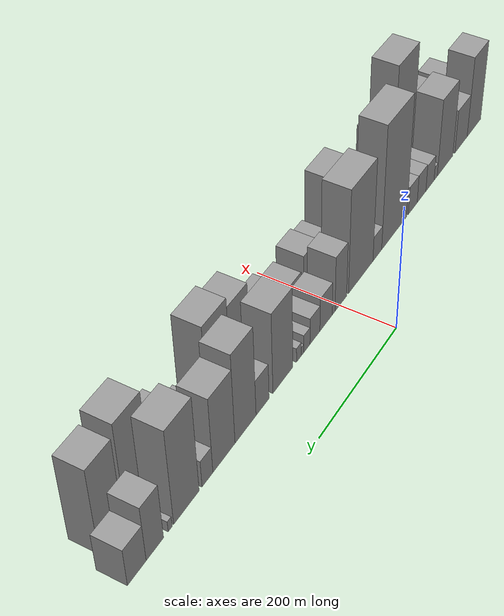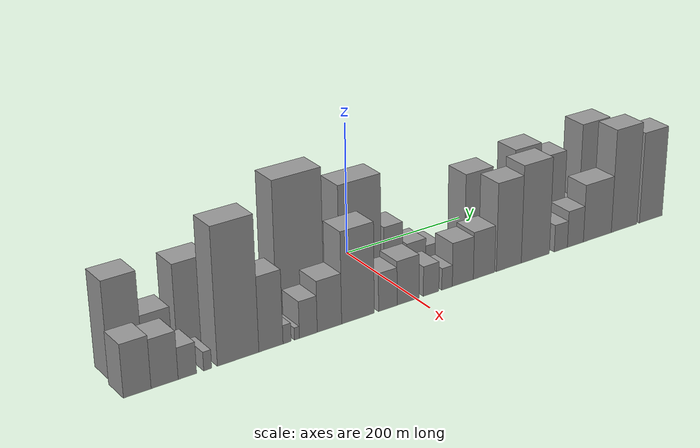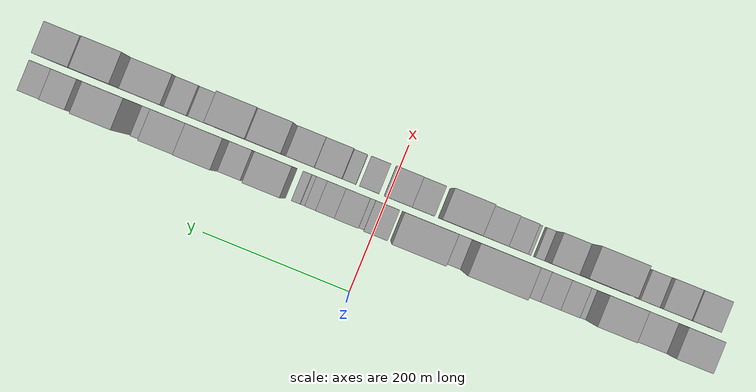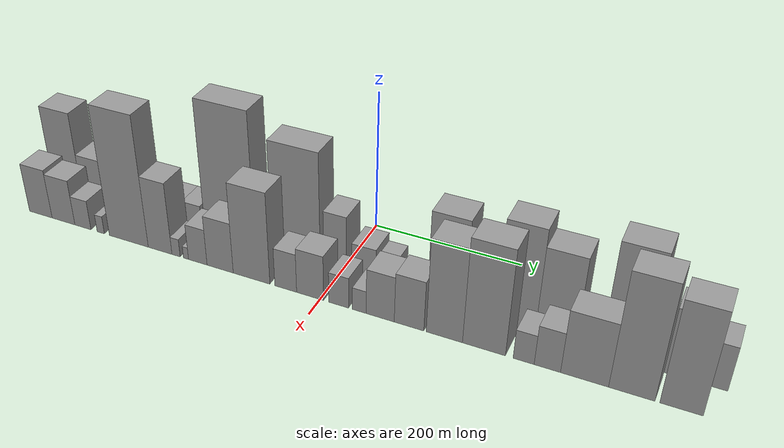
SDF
<sdf version="1.6">
 <world name="default">
  <scene>
   <sky><clouds><speed>12</speed></clouds></sky>
   <ambient>0.4 0.4 0.4 1</ambient>
   <background>0.7 0.7 0.7 1</background>
   <shadows>1</shadows>
  </scene>
  <gravity>0 0 -9.8066</gravity>
  <magnetic_field>6e-06 2.3e-05 -4.2e-05</magnetic_field>
  <physics default="0" name="default_physics" type="ode">
   <ode>
    <solver>
     <type>quick</type>
     <iters>10</iters>
     <sor>1.0</sor>
     <use_dynamic_moi_rescaling>0</use_dynamic_moi_rescaling>
    </solver>
    <constraints>
     <cfm>0</cfm>
     <erp>0.2</erp>
     <contact_max_correcting_vel>100</contact_max_correcting_vel>
     <contact_surface_layer>0.001</contact_surface_layer>
    </constraints>
   </ode>
   <max_step_size>0.004</max_step_size>
   <real_time_factor>1</real_time_factor>
   <real_time_update_rate>250</real_time_update_rate>
  </physics>
  <light name="sun" type="directional">
   <pose>0 0 10 0 0 0</pose>
   <diffuse>0.8 0.8 0.8 1</diffuse>
   <specular>0.2 0.2 0.2 1</specular>
   <attenuation>
    <range>1000</range>
    <constant>0.9</constant>
    <linear>0.01</linear>
    <quadratic>0.001</quadratic>
   </attenuation>
   <direction>-0.5 0.1 -0.9</direction>
  </light>
  <model name="building_1">
   <static>1</static>
   <pose>100.0000 -409.4614 0 0.000000 0.000000 0.000000</pose>
   <link name="link">
    <pose>0 0 69.00 0 0 0</pose>
    <collision name="collision"><geometry><box><size>40.0000 47.0772 138.0000</size></box></geometry></collision>
    <visual name="visual">
     <cast_shadows>0</cast_shadows>
     <geometry><box><size>40.0000 47.0772 138.0000</size></box></geometry>
     <material>
      <script>
       <uri>model://grey_wall/materials/scripts</uri>
       <uri>model://grey_wall/materials/textures</uri>
       <name>vrc/grey_wall</name>
      </script>
     </material>
    </visual>
   </link>
  </model>
  <model name="building_2">
   <static>1</static>
   <pose>100.0000 -365.0946 0 0.000000 0.000000 0.000000</pose>
   <link name="link">
    <pose>0 0 37.50 0 0 0</pose>
    <collision name="collision"><geometry><box><size>40.0000 41.6565 75.0000</size></box></geometry></collision>
    <visual name="visual">
     <cast_shadows>0</cast_shadows>
     <geometry><box><size>40.0000 41.6565 75.0000</size></box></geometry>
     <material>
      <script>
       <uri>model://grey_wall/materials/scripts</uri>
       <uri>model://grey_wall/materials/textures</uri>
       <name>vrc/grey_wall</name>
      </script>
     </material>
    </visual>
   </link>
  </model>
  <model name="building_3">
   <static>1</static>
   <pose>100.0000 -311.8531 0 0.000000 0.000000 0.000000</pose>
   <link name="link">
    <pose>0 0 66.00 0 0 0</pose>
    <collision name="collision"><geometry><box><size>40.0000 50.8265 132.0000</size></box></geometry></collision>
    <visual name="visual">
     <cast_shadows>0</cast_shadows>
     <geometry><box><size>40.0000 50.8265 132.0000</size></box></geometry>
     <material>
      <script>
       <uri>model://grey_wall/materials/scripts</uri>
       <uri>model://grey_wall/materials/textures</uri>
       <name>vrc/grey_wall</name>
      </script>
     </material>
    </visual>
   </link>
  </model>
  <model name="building_4">
   <static>1</static>
   <pose>100.0000 -281.1949 0 0.000000 0.000000 0.000000</pose>
   <link name="link">
    <pose>0 0 12.00 0 0 0</pose>
    <collision name="collision"><geometry><box><size>40.0000 10.4900 24.0000</size></box></geometry></collision>
    <visual name="visual">
     <cast_shadows>0</cast_shadows>
     <geometry><box><size>40.0000 10.4900 24.0000</size></box></geometry>
     <material>
      <script>
       <uri>model://grey_wall/materials/scripts</uri>
       <uri>model://grey_wall/materials/textures</uri>
       <name>vrc/grey_wall</name>
      </script>
     </material>
    </visual>
   </link>
  </model>
  <model name="building_5">
   <static>1</static>
   <pose>100.0000 -262.9071 0 0.000000 0.000000 0.000000</pose>
   <link name="link">
    <pose>0 0 22.50 0 0 0</pose>
    <collision name="collision"><geometry><box><size>40.0000 26.0856 45.0000</size></box></geometry></collision>
    <visual name="visual">
     <cast_shadows>0</cast_shadows>
     <geometry><box><size>40.0000 26.0856 45.0000</size></box></geometry>
     <material>
      <script>
       <uri>model://grey_wall/materials/scripts</uri>
       <uri>model://grey_wall/materials/textures</uri>
       <name>vrc/grey_wall</name>
      </script>
     </material>
    </visual>
   </link>
  </model>
  <model name="building_6">
   <static>1</static>
   <pose>100.0000 -236.3445 0 0.000000 0.000000 0.000000</pose>
   <link name="link">
    <pose>0 0 24.00 0 0 0</pose>
    <collision name="collision"><geometry><box><size>40.0000 27.0394 48.0000</size></box></geometry></collision>
    <visual name="visual">
     <cast_shadows>0</cast_shadows>
     <geometry><box><size>40.0000 27.0394 48.0000</size></box></geometry>
     <material>
      <script>
       <uri>model://grey_wall/materials/scripts</uri>
       <uri>model://grey_wall/materials/textures</uri>
       <name>vrc/grey_wall</name>
      </script>
     </material>
    </visual>
   </link>
  </model>
  <model name="building_7">
   <static>1</static>
   <pose>100.0000 -209.1053 0 0.000000 0.000000 0.000000</pose>
   <link name="link">
    <pose>0 0 24.00 0 0 0</pose>
    <collision name="collision"><geometry><box><size>40.0000 27.4389 48.0000</size></box></geometry></collision>
    <visual name="visual">
     <cast_shadows>0</cast_shadows>
     <geometry><box><size>40.0000 27.4389 48.0000</size></box></geometry>
     <material>
      <script>
       <uri>model://grey_wall/materials/scripts</uri>
       <uri>model://grey_wall/materials/textures</uri>
       <name>vrc/grey_wall</name>
      </script>
     </material>
    </visual>
   </link>
  </model>
  <model name="building_8">
   <static>1</static>
   <pose>100.0000 -153.4425 0 0.000000 0.000000 0.000000</pose>
   <link name="link">
    <pose>0 0 103.50 0 0 0</pose>
    <collision name="collision"><geometry><box><size>40.0000 73.8868 207.0000</size></box></geometry></collision>
    <visual name="visual">
     <cast_shadows>0</cast_shadows>
     <geometry><box><size>40.0000 73.8868 207.0000</size></box></geometry>
     <material>
      <script>
       <uri>model://grey_wall/materials/scripts</uri>
       <uri>model://grey_wall/materials/textures</uri>
       <name>vrc/grey_wall</name>
      </script>
     </material>
    </visual>
   </link>
  </model>
  <model name="building_9">
   <static>1</static>
   <pose>100.0000 -104.0203 0 0.000000 0.000000 0.000000</pose>
   <link name="link">
    <pose>0 0 21.00 0 0 0</pose>
    <collision name="collision"><geometry><box><size>40.0000 24.9575 42.0000</size></box></geometry></collision>
    <visual name="visual">
     <cast_shadows>0</cast_shadows>
     <geometry><box><size>40.0000 24.9575 42.0000</size></box></geometry>
     <material>
      <script>
       <uri>model://grey_wall/materials/scripts</uri>
       <uri>model://grey_wall/materials/textures</uri>
       <name>vrc/grey_wall</name>
      </script>
     </material>
    </visual>
   </link>
  </model>
  <model name="building_10">
   <static>1</static>
   <pose>100.0000 -57.6209 0 0.000000 0.000000 0.000000</pose>
   <link name="link">
    <pose>0 0 87.00 0 0 0</pose>
    <collision name="collision"><geometry><box><size>40.0000 67.8414 174.0000</size></box></geometry></collision>
    <visual name="visual">
     <cast_shadows>0</cast_shadows>
     <geometry><box><size>40.0000 67.8414 174.0000</size></box></geometry>
     <material>
      <script>
       <uri>model://grey_wall/materials/scripts</uri>
       <uri>model://grey_wall/materials/textures</uri>
       <name>vrc/grey_wall</name>
      </script>
     </material>
    </visual>
   </link>
  </model>
  <model name="building_11">
   <static>1</static>
   <pose>100.0000 -3.1786 0 0.000000 0.000000 0.000000</pose>
   <link name="link">
    <pose>0 0 46.50 0 0 0</pose>
    <collision name="collision"><geometry><box><size>40.0000 31.0432 93.0000</size></box></geometry></collision>
    <visual name="visual">
     <cast_shadows>0</cast_shadows>
     <geometry><box><size>40.0000 31.0432 93.0000</size></box></geometry>
     <material>
      <script>
       <uri>model://grey_wall/materials/scripts</uri>
       <uri>model://grey_wall/materials/textures</uri>
       <name>vrc/grey_wall</name>
      </script>
     </material>
    </visual>
   </link>
  </model>
  <model name="building_12">
   <static>1</static>
   <pose>100.0000 15.9284 0 0.000000 0.000000 0.000000</pose>
   <link name="link">
    <pose>0 0 7.50 0 0 0</pose>
    <collision name="collision"><geometry><box><size>40.0000 7.1708 15.0000</size></box></geometry></collision>
    <visual name="visual">
     <cast_shadows>0</cast_shadows>
     <geometry><box><size>40.0000 7.1708 15.0000</size></box></geometry>
     <material>
      <script>
       <uri>model://grey_wall/materials/scripts</uri>
       <uri>model://grey_wall/materials/textures</uri>
       <name>vrc/grey_wall</name>
      </script>
     </material>
    </visual>
   </link>
  </model>
  <model name="building_13">
   <static>1</static>
   <pose>100.0000 35.5985 0 0.000000 0.000000 0.000000</pose>
   <link name="link">
    <pose>0 0 28.50 0 0 0</pose>
    <collision name="collision"><geometry><box><size>40.0000 32.1693 57.0000</size></box></geometry></collision>
    <visual name="visual">
     <cast_shadows>0</cast_shadows>
     <geometry><box><size>40.0000 32.1693 57.0000</size></box></geometry>
     <material>
      <script>
       <uri>model://grey_wall/materials/scripts</uri>
       <uri>model://grey_wall/materials/textures</uri>
       <name>vrc/grey_wall</name>
      </script>
     </material>
    </visual>
   </link>
  </model>
  <model name="building_14">
   <static>1</static>
   <pose>100.0000 64.3368 0 0.000000 0.000000 0.000000</pose>
   <link name="link">
    <pose>0 0 22.50 0 0 0</pose>
    <collision name="collision"><geometry><box><size>40.0000 25.3074 45.0000</size></box></geometry></collision>
    <visual name="visual">
     <cast_shadows>0</cast_shadows>
     <geometry><box><size>40.0000 25.3074 45.0000</size></box></geometry>
     <material>
      <script>
       <uri>model://grey_wall/materials/scripts</uri>
       <uri>model://grey_wall/materials/textures</uri>
       <name>vrc/grey_wall</name>
      </script>
     </material>
    </visual>
   </link>
  </model>
  <model name="building_15">
   <static>1</static>
   <pose>100.0000 84.6189 0 0.000000 0.000000 0.000000</pose>
   <link name="link">
    <pose>0 0 15.00 0 0 0</pose>
    <collision name="collision"><geometry><box><size>40.0000 15.2567 30.0000</size></box></geometry></collision>
    <visual name="visual">
     <cast_shadows>0</cast_shadows>
     <geometry><box><size>40.0000 15.2567 30.0000</size></box></geometry>
     <material>
      <script>
       <uri>model://grey_wall/materials/scripts</uri>
       <uri>model://grey_wall/materials/textures</uri>
       <name>vrc/grey_wall</name>
      </script>
     </material>
    </visual>
   </link>
  </model>
  <model name="building_16">
   <static>1</static>
   <pose>100.0000 95.3772 0 0.000000 0.000000 0.000000</pose>
   <link name="link">
    <pose>0 0 7.50 0 0 0</pose>
    <collision name="collision"><geometry><box><size>40.0000 6.2601 15.0000</size></box></geometry></collision>
    <visual name="visual">
     <cast_shadows>0</cast_shadows>
     <geometry><box><size>40.0000 6.2601 15.0000</size></box></geometry>
     <material>
      <script>
       <uri>model://grey_wall/materials/scripts</uri>
       <uri>model://grey_wall/materials/textures</uri>
       <name>vrc/grey_wall</name>
      </script>
     </material>
    </visual>
   </link>
  </model>
  <model name="building_17">
   <static>1</static>
   <pose>100.0000 104.4697 0 0.000000 0.000000 0.000000</pose>
   <link name="link">
    <pose>0 0 12.00 0 0 0</pose>
    <collision name="collision"><geometry><box><size>40.0000 11.9249 24.0000</size></box></geometry></collision>
    <visual name="visual">
     <cast_shadows>0</cast_shadows>
     <geometry><box><size>40.0000 11.9249 24.0000</size></box></geometry>
     <material>
      <script>
       <uri>model://grey_wall/materials/scripts</uri>
       <uri>model://grey_wall/materials/textures</uri>
       <name>vrc/grey_wall</name>
      </script>
     </material>
    </visual>
   </link>
  </model>
  <model name="building_18">
   <static>1</static>
   <pose>100.0000 143.3499 0 0.000000 0.000000 0.000000</pose>
   <link name="link">
    <pose>0 0 67.50 0 0 0</pose>
    <collision name="collision"><geometry><box><size>40.0000 47.8355 135.0000</size></box></geometry></collision>
    <visual name="visual">
     <cast_shadows>0</cast_shadows>
     <geometry><box><size>40.0000 47.8355 135.0000</size></box></geometry>
     <material>
      <script>
       <uri>model://grey_wall/materials/scripts</uri>
       <uri>model://grey_wall/materials/textures</uri>
       <name>vrc/grey_wall</name>
      </script>
     </material>
    </visual>
   </link>
  </model>
  <model name="building_19">
   <static>1</static>
   <pose>100.0000 191.3080 0 0.000000 0.000000 0.000000</pose>
   <link name="link">
    <pose>0 0 30.00 0 0 0</pose>
    <collision name="collision"><geometry><box><size>40.0000 30.0808 60.0000</size></box></geometry></collision>
    <visual name="visual">
     <cast_shadows>0</cast_shadows>
     <geometry><box><size>40.0000 30.0808 60.0000</size></box></geometry>
     <material>
      <script>
       <uri>model://grey_wall/materials/scripts</uri>
       <uri>model://grey_wall/materials/textures</uri>
       <name>vrc/grey_wall</name>
      </script>
     </material>
    </visual>
   </link>
  </model>
  <model name="building_20">
   <static>1</static>
   <pose>100.0000 229.9911 0 0.000000 0.000000 0.000000</pose>
   <link name="link">
    <pose>0 0 75.00 0 0 0</pose>
    <collision name="collision"><geometry><box><size>40.0000 47.2853 150.0000</size></box></geometry></collision>
    <visual name="visual">
     <cast_shadows>0</cast_shadows>
     <geometry><box><size>40.0000 47.2853 150.0000</size></box></geometry>
     <material>
      <script>
       <uri>model://grey_wall/materials/scripts</uri>
       <uri>model://grey_wall/materials/textures</uri>
       <name>vrc/grey_wall</name>
      </script>
     </material>
    </visual>
   </link>
  </model>
  <model name="building_21">
   <static>1</static>
   <pose>100.0000 277.5920 0 0.000000 0.000000 0.000000</pose>
   <link name="link">
    <pose>0 0 63.00 0 0 0</pose>
    <collision name="collision"><geometry><box><size>40.0000 47.9166 126.0000</size></box></geometry></collision>
    <visual name="visual">
     <cast_shadows>0</cast_shadows>
     <geometry><box><size>40.0000 47.9166 126.0000</size></box></geometry>
     <material>
      <script>
       <uri>model://grey_wall/materials/scripts</uri>
       <uri>model://grey_wall/materials/textures</uri>
       <name>vrc/grey_wall</name>
      </script>
     </material>
    </visual>
   </link>
  </model>
  <model name="building_22">
   <static>1</static>
   <pose>100.0000 312.9710 0 0.000000 0.000000 0.000000</pose>
   <link name="link">
    <pose>0 0 22.50 0 0 0</pose>
    <collision name="collision"><geometry><box><size>40.0000 22.8412 45.0000</size></box></geometry></collision>
    <visual name="visual">
     <cast_shadows>0</cast_shadows>
     <geometry><box><size>40.0000 22.8412 45.0000</size></box></geometry>
     <material>
      <script>
       <uri>model://grey_wall/materials/scripts</uri>
       <uri>model://grey_wall/materials/textures</uri>
       <name>vrc/grey_wall</name>
      </script>
     </material>
    </visual>
   </link>
  </model>
  <model name="building_23">
   <static>1</static>
   <pose>100.0000 356.3188 0 0.000000 0.000000 0.000000</pose>
   <link name="link">
    <pose>0 0 79.50 0 0 0</pose>
    <collision name="collision"><geometry><box><size>40.0000 51.8543 159.0000</size></box></geometry></collision>
    <visual name="visual">
     <cast_shadows>0</cast_shadows>
     <geometry><box><size>40.0000 51.8543 159.0000</size></box></geometry>
     <material>
      <script>
       <uri>model://grey_wall/materials/scripts</uri>
       <uri>model://grey_wall/materials/textures</uri>
       <name>vrc/grey_wall</name>
      </script>
     </material>
    </visual>
   </link>
  </model>
  <model name="building_24">
   <static>1</static>
   <pose>100.0000 389.1446 0 0.000000 0.000000 0.000000</pose>
   <link name="link">
    <pose>0 0 9.00 0 0 0</pose>
    <collision name="collision"><geometry><box><size>40.0000 7.7974 18.0000</size></box></geometry></collision>
    <visual name="visual">
     <cast_shadows>0</cast_shadows>
     <geometry><box><size>40.0000 7.7974 18.0000</size></box></geometry>
     <material>
      <script>
       <uri>model://grey_wall/materials/scripts</uri>
       <uri>model://grey_wall/materials/textures</uri>
       <name>vrc/grey_wall</name>
      </script>
     </material>
    </visual>
   </link>
  </model>
  <model name="building_25">
   <static>1</static>
   <pose>100.0000 418.8603 0 0.000000 0.000000 0.000000</pose>
   <link name="link">
    <pose>0 0 46.50 0 0 0</pose>
    <collision name="collision"><geometry><box><size>40.0000 33.6339 93.0000</size></box></geometry></collision>
    <visual name="visual">
     <cast_shadows>0</cast_shadows>
     <geometry><box><size>40.0000 33.6339 93.0000</size></box></geometry>
     <material>
      <script>
       <uri>model://grey_wall/materials/scripts</uri>
       <uri>model://grey_wall/materials/textures</uri>
       <name>vrc/grey_wall</name>
      </script>
     </material>
    </visual>
   </link>
  </model>
  <model name="building_26">
   <static>1</static>
   <pose>100.0000 453.3038 0 0.000000 0.000000 0.000000</pose>
   <link name="link">
    <pose>0 0 31.50 0 0 0</pose>
    <collision name="collision"><geometry><box><size>40.0000 35.2532 63.0000</size></box></geometry></collision>
    <visual name="visual">
     <cast_shadows>0</cast_shadows>
     <geometry><box><size>40.0000 35.2532 63.0000</size></box></geometry>
     <material>
      <script>
       <uri>model://grey_wall/materials/scripts</uri>
       <uri>model://grey_wall/materials/textures</uri>
       <name>vrc/grey_wall</name>
      </script>
     </material>
    </visual>
   </link>
  </model>
  <model name="building_27">
   <static>1</static>
   <pose>149.0000 -419.1655 0 0.000000 0.000000 0.000000</pose>
   <link name="link">
    <pose>0 0 37.50 0 0 0</pose>
    <collision name="collision"><geometry><box><size>40.0000 37.6691 75.0000</size></box></geometry></collision>
    <visual name="visual">
     <cast_shadows>0</cast_shadows>
     <geometry><box><size>40.0000 37.6691 75.0000</size></box></geometry>
     <material>
      <script>
       <uri>model://grey_wall/materials/scripts</uri>
       <uri>model://grey_wall/materials/textures</uri>
       <name>vrc/grey_wall</name>
      </script>
     </material>
    </visual>
   </link>
  </model>
  <model name="building_28">
   <static>1</static>
   <pose>149.0000 -381.6308 0 0.000000 0.000000 0.000000</pose>
   <link name="link">
    <pose>0 0 34.50 0 0 0</pose>
    <collision name="collision"><geometry><box><size>40.0000 37.4002 69.0000</size></box></geometry></collision>
    <visual name="visual">
     <cast_shadows>0</cast_shadows>
     <geometry><box><size>40.0000 37.4002 69.0000</size></box></geometry>
     <material>
      <script>
       <uri>model://grey_wall/materials/scripts</uri>
       <uri>model://grey_wall/materials/textures</uri>
       <name>vrc/grey_wall</name>
      </script>
     </material>
    </visual>
   </link>
  </model>
  <model name="building_29">
   <static>1</static>
   <pose>149.0000 -349.9887 0 0.000000 0.000000 0.000000</pose>
   <link name="link">
    <pose>0 0 22.50 0 0 0</pose>
    <collision name="collision"><geometry><box><size>40.0000 25.8842 45.0000</size></box></geometry></collision>
    <visual name="visual">
     <cast_shadows>0</cast_shadows>
     <geometry><box><size>40.0000 25.8842 45.0000</size></box></geometry>
     <material>
      <script>
       <uri>model://grey_wall/materials/scripts</uri>
       <uri>model://grey_wall/materials/textures</uri>
       <name>vrc/grey_wall</name>
      </script>
     </material>
    </visual>
   </link>
  </model>
  <model name="building_30">
   <static>1</static>
   <pose>149.0000 -321.2995 0 0.000000 0.000000 0.000000</pose>
   <link name="link">
    <pose>0 0 13.50 0 0 0</pose>
    <collision name="collision"><geometry><box><size>40.0000 11.4941 27.0000</size></box></geometry></collision>
    <visual name="visual">
     <cast_shadows>0</cast_shadows>
     <geometry><box><size>40.0000 11.4941 27.0000</size></box></geometry>
     <material>
      <script>
       <uri>model://grey_wall/materials/scripts</uri>
       <uri>model://grey_wall/materials/textures</uri>
       <name>vrc/grey_wall</name>
      </script>
     </material>
    </visual>
   </link>
  </model>
  <model name="building_31">
   <static>1</static>
   <pose>149.0000 -277.2531 0 0.000000 0.000000 0.000000</pose>
   <link name="link">
    <pose>0 0 97.50 0 0 0</pose>
    <collision name="collision"><geometry><box><size>40.0000 60.5988 195.0000</size></box></geometry></collision>
    <visual name="visual">
     <cast_shadows>0</cast_shadows>
     <geometry><box><size>40.0000 60.5988 195.0000</size></box></geometry>
     <material>
      <script>
       <uri>model://grey_wall/materials/scripts</uri>
       <uri>model://grey_wall/materials/textures</uri>
       <name>vrc/grey_wall</name>
      </script>
     </material>
    </visual>
   </link>
  </model>
  <model name="building_32">
   <static>1</static>
   <pose>149.0000 -228.9478 0 0.000000 0.000000 0.000000</pose>
   <link name="link">
    <pose>0 0 54.00 0 0 0</pose>
    <collision name="collision"><geometry><box><size>40.0000 36.0118 108.0000</size></box></geometry></collision>
    <visual name="visual">
     <cast_shadows>0</cast_shadows>
     <geometry><box><size>40.0000 36.0118 108.0000</size></box></geometry>
     <material>
      <script>
       <uri>model://grey_wall/materials/scripts</uri>
       <uri>model://grey_wall/materials/textures</uri>
       <name>vrc/grey_wall</name>
      </script>
     </material>
    </visual>
   </link>
  </model>
  <model name="building_33">
   <static>1</static>
   <pose>149.0000 -204.8013 0 0.000000 0.000000 0.000000</pose>
   <link name="link">
    <pose>0 0 13.50 0 0 0</pose>
    <collision name="collision"><geometry><box><size>40.0000 12.2812 27.0000</size></box></geometry></collision>
    <visual name="visual">
     <cast_shadows>0</cast_shadows>
     <geometry><box><size>40.0000 12.2812 27.0000</size></box></geometry>
     <material>
      <script>
       <uri>model://grey_wall/materials/scripts</uri>
       <uri>model://grey_wall/materials/textures</uri>
       <name>vrc/grey_wall</name>
      </script>
     </material>
    </visual>
   </link>
  </model>
  <model name="building_34">
   <static>1</static>
   <pose>149.0000 -189.9029 0 0.000000 0.000000 0.000000</pose>
   <link name="link">
    <pose>0 0 9.00 0 0 0</pose>
    <collision name="collision"><geometry><box><size>40.0000 7.5156 18.0000</size></box></geometry></collision>
    <visual name="visual">
     <cast_shadows>0</cast_shadows>
     <geometry><box><size>40.0000 7.5156 18.0000</size></box></geometry>
     <material>
      <script>
       <uri>model://grey_wall/materials/scripts</uri>
       <uri>model://grey_wall/materials/textures</uri>
       <name>vrc/grey_wall</name>
      </script>
     </material>
    </visual>
   </link>
  </model>
  <model name="building_35">
   <static>1</static>
   <pose>149.0000 -172.4348 0 0.000000 0.000000 0.000000</pose>
   <link name="link">
    <pose>0 0 27.00 0 0 0</pose>
    <collision name="collision"><geometry><box><size>40.0000 27.4206 54.0000</size></box></geometry></collision>
    <visual name="visual">
     <cast_shadows>0</cast_shadows>
     <geometry><box><size>40.0000 27.4206 54.0000</size></box></geometry>
     <material>
      <script>
       <uri>model://grey_wall/materials/scripts</uri>
       <uri>model://grey_wall/materials/textures</uri>
       <name>vrc/grey_wall</name>
      </script>
     </material>
    </visual>
   </link>
  </model>
  <model name="building_36">
   <static>1</static>
   <pose>149.0000 -139.7153 0 0.000000 0.000000 0.000000</pose>
   <link name="link">
    <pose>0 0 37.50 0 0 0</pose>
    <collision name="collision"><geometry><box><size>40.0000 38.0186 75.0000</size></box></geometry></collision>
    <visual name="visual">
     <cast_shadows>0</cast_shadows>
     <geometry><box><size>40.0000 38.0186 75.0000</size></box></geometry>
     <material>
      <script>
       <uri>model://grey_wall/materials/scripts</uri>
       <uri>model://grey_wall/materials/textures</uri>
       <name>vrc/grey_wall</name>
      </script>
     </material>
    </visual>
   </link>
  </model>
  <model name="building_37">
   <static>1</static>
   <pose>149.0000 -94.7441 0 0.000000 0.000000 0.000000</pose>
   <link name="link">
    <pose>0 0 67.50 0 0 0</pose>
    <collision name="collision"><geometry><box><size>40.0000 51.9238 135.0000</size></box></geometry></collision>
    <visual name="visual">
     <cast_shadows>0</cast_shadows>
     <geometry><box><size>40.0000 51.9238 135.0000</size></box></geometry>
     <material>
      <script>
       <uri>model://grey_wall/materials/scripts</uri>
       <uri>model://grey_wall/materials/textures</uri>
       <name>vrc/grey_wall</name>
      </script>
     </material>
    </visual>
   </link>
  </model>
  <model name="building_38">
   <static>1</static>
   <pose>149.0000 -46.7488 0 0.000000 0.000000 0.000000</pose>
   <link name="link">
    <pose>0 0 28.50 0 0 0</pose>
    <collision name="collision"><geometry><box><size>40.0000 30.0667 57.0000</size></box></geometry></collision>
    <visual name="visual">
     <cast_shadows>0</cast_shadows>
     <geometry><box><size>40.0000 30.0667 57.0000</size></box></geometry>
     <material>
      <script>
       <uri>model://grey_wall/materials/scripts</uri>
       <uri>model://grey_wall/materials/textures</uri>
       <name>vrc/grey_wall</name>
      </script>
     </material>
    </visual>
   </link>
  </model>
  <model name="building_39">
   <static>1</static>
   <pose>149.0000 -13.3901 0 0.000000 0.000000 0.000000</pose>
   <link name="link">
    <pose>0 0 33.00 0 0 0</pose>
    <collision name="collision"><geometry><box><size>40.0000 36.6507 66.0000</size></box></geometry></collision>
    <visual name="visual">
     <cast_shadows>0</cast_shadows>
     <geometry><box><size>40.0000 36.6507 66.0000</size></box></geometry>
     <material>
      <script>
       <uri>model://grey_wall/materials/scripts</uri>
       <uri>model://grey_wall/materials/textures</uri>
       <name>vrc/grey_wall</name>
      </script>
     </material>
    </visual>
   </link>
  </model>
  <model name="building_40">
   <static>1</static>
   <pose>149.0000 25.0280 0 0.000000 0.000000 0.000000</pose>
   <link name="link">
    <pose>0 0 22.50 0 0 0</pose>
    <collision name="collision"><geometry><box><size>40.0000 26.1854 45.0000</size></box></geometry></collision>
    <visual name="visual">
     <cast_shadows>0</cast_shadows>
     <geometry><box><size>40.0000 26.1854 45.0000</size></box></geometry>
     <material>
      <script>
       <uri>model://grey_wall/materials/scripts</uri>
       <uri>model://grey_wall/materials/textures</uri>
       <name>vrc/grey_wall</name>
      </script>
     </material>
    </visual>
   </link>
  </model>
  <model name="building_41">
   <static>1</static>
   <pose>149.0000 52.1017 0 0.000000 0.000000 0.000000</pose>
   <link name="link">
    <pose>0 0 16.50 0 0 0</pose>
    <collision name="collision"><geometry><box><size>40.0000 17.9620 33.0000</size></box></geometry></collision>
    <visual name="visual">
     <cast_shadows>0</cast_shadows>
     <geometry><box><size>40.0000 17.9620 33.0000</size></box></geometry>
     <material>
      <script>
       <uri>model://grey_wall/materials/scripts</uri>
       <uri>model://grey_wall/materials/textures</uri>
       <name>vrc/grey_wall</name>
      </script>
     </material>
    </visual>
   </link>
  </model>
  <model name="building_42">
   <static>1</static>
   <pose>149.0000 79.2631 0 0.000000 0.000000 0.000000</pose>
   <link name="link">
    <pose>0 0 33.00 0 0 0</pose>
    <collision name="collision"><geometry><box><size>40.0000 36.3609 66.0000</size></box></geometry></collision>
    <visual name="visual">
     <cast_shadows>0</cast_shadows>
     <geometry><box><size>40.0000 36.3609 66.0000</size></box></geometry>
     <material>
      <script>
       <uri>model://grey_wall/materials/scripts</uri>
       <uri>model://grey_wall/materials/textures</uri>
       <name>vrc/grey_wall</name>
      </script>
     </material>
    </visual>
   </link>
  </model>
  <model name="building_43">
   <static>1</static>
   <pose>149.0000 116.1376 0 0.000000 0.000000 0.000000</pose>
   <link name="link">
    <pose>0 0 36.00 0 0 0</pose>
    <collision name="collision"><geometry><box><size>40.0000 37.3880 72.0000</size></box></geometry></collision>
    <visual name="visual">
     <cast_shadows>0</cast_shadows>
     <geometry><box><size>40.0000 37.3880 72.0000</size></box></geometry>
     <material>
      <script>
       <uri>model://grey_wall/materials/scripts</uri>
       <uri>model://grey_wall/materials/textures</uri>
       <name>vrc/grey_wall</name>
      </script>
     </material>
    </visual>
   </link>
  </model>
  <model name="building_44">
   <static>1</static>
   <pose>149.0000 160.1861 0 0.000000 0.000000 0.000000</pose>
   <link name="link">
    <pose>0 0 67.50 0 0 0</pose>
    <collision name="collision"><geometry><box><size>40.0000 44.7092 135.0000</size></box></geometry></collision>
    <visual name="visual">
     <cast_shadows>0</cast_shadows>
     <geometry><box><size>40.0000 44.7092 135.0000</size></box></geometry>
     <material>
      <script>
       <uri>model://grey_wall/materials/scripts</uri>
       <uri>model://grey_wall/materials/textures</uri>
       <name>vrc/grey_wall</name>
      </script>
     </material>
    </visual>
   </link>
  </model>
  <model name="building_45">
   <static>1</static>
   <pose>149.0000 208.3413 0 0.000000 0.000000 0.000000</pose>
   <link name="link">
    <pose>0 0 75.00 0 0 0</pose>
    <collision name="collision"><geometry><box><size>40.0000 51.6011 150.0000</size></box></geometry></collision>
    <visual name="visual">
     <cast_shadows>0</cast_shadows>
     <geometry><box><size>40.0000 51.6011 150.0000</size></box></geometry>
     <material>
      <script>
       <uri>model://grey_wall/materials/scripts</uri>
       <uri>model://grey_wall/materials/textures</uri>
       <name>vrc/grey_wall</name>
      </script>
     </material>
    </visual>
   </link>
  </model>
  <model name="building_46">
   <static>1</static>
   <pose>149.0000 255.4293 0 0.000000 0.000000 0.000000</pose>
   <link name="link">
    <pose>0 0 21.00 0 0 0</pose>
    <collision name="collision"><geometry><box><size>40.0000 24.5750 42.0000</size></box></geometry></collision>
    <visual name="visual">
     <cast_shadows>0</cast_shadows>
     <geometry><box><size>40.0000 24.5750 42.0000</size></box></geometry>
     <material>
      <script>
       <uri>model://grey_wall/materials/scripts</uri>
       <uri>model://grey_wall/materials/textures</uri>
       <name>vrc/grey_wall</name>
      </script>
     </material>
    </visual>
   </link>
  </model>
  <model name="building_47">
   <static>1</static>
   <pose>149.0000 282.8569 0 0.000000 0.000000 0.000000</pose>
   <link name="link">
    <pose>0 0 28.50 0 0 0</pose>
    <collision name="collision"><geometry><box><size>40.0000 30.2802 57.0000</size></box></geometry></collision>
    <visual name="visual">
     <cast_shadows>0</cast_shadows>
     <geometry><box><size>40.0000 30.2802 57.0000</size></box></geometry>
     <material>
      <script>
       <uri>model://grey_wall/materials/scripts</uri>
       <uri>model://grey_wall/materials/textures</uri>
       <name>vrc/grey_wall</name>
      </script>
     </material>
    </visual>
   </link>
  </model>
  <model name="building_48">
   <static>1</static>
   <pose>149.0000 324.9307 0 0.000000 0.000000 0.000000</pose>
   <link name="link">
    <pose>0 0 45.00 0 0 0</pose>
    <collision name="collision"><geometry><box><size>40.0000 53.8675 90.0000</size></box></geometry></collision>
    <visual name="visual">
     <cast_shadows>0</cast_shadows>
     <geometry><box><size>40.0000 53.8675 90.0000</size></box></geometry>
     <material>
      <script>
       <uri>model://grey_wall/materials/scripts</uri>
       <uri>model://grey_wall/materials/textures</uri>
       <name>vrc/grey_wall</name>
      </script>
     </material>
    </visual>
   </link>
  </model>
  <model name="building_49">
   <static>1</static>
   <pose>149.0000 377.1143 0 0.000000 0.000000 0.000000</pose>
   <link name="link">
    <pose>0 0 81.00 0 0 0</pose>
    <collision name="collision"><geometry><box><size>40.0000 50.4996 162.0000</size></box></geometry></collision>
    <visual name="visual">
     <cast_shadows>0</cast_shadows>
     <geometry><box><size>40.0000 50.4996 162.0000</size></box></geometry>
     <material>
      <script>
       <uri>model://grey_wall/materials/scripts</uri>
       <uri>model://grey_wall/materials/textures</uri>
       <name>vrc/grey_wall</name>
      </script>
     </material>
    </visual>
   </link>
  </model>
  <model name="building_50">
   <static>1</static>
   <pose>149.0000 430.3167 0 0.000000 0.000000 0.000000</pose>
   <link name="link">
    <pose>0 0 72.00 0 0 0</pose>
    <collision name="collision"><geometry><box><size>40.0000 45.9052 144.0000</size></box></geometry></collision>
    <visual name="visual">
     <cast_shadows>0</cast_shadows>
     <geometry><box><size>40.0000 45.9052 144.0000</size></box></geometry>
     <material>
      <script>
       <uri>model://grey_wall/materials/scripts</uri>
       <uri>model://grey_wall/materials/textures</uri>
       <name>vrc/grey_wall</name>
      </script>
     </material>
    </visual>
   </link>
  </model>
 </world>
</sdf>
